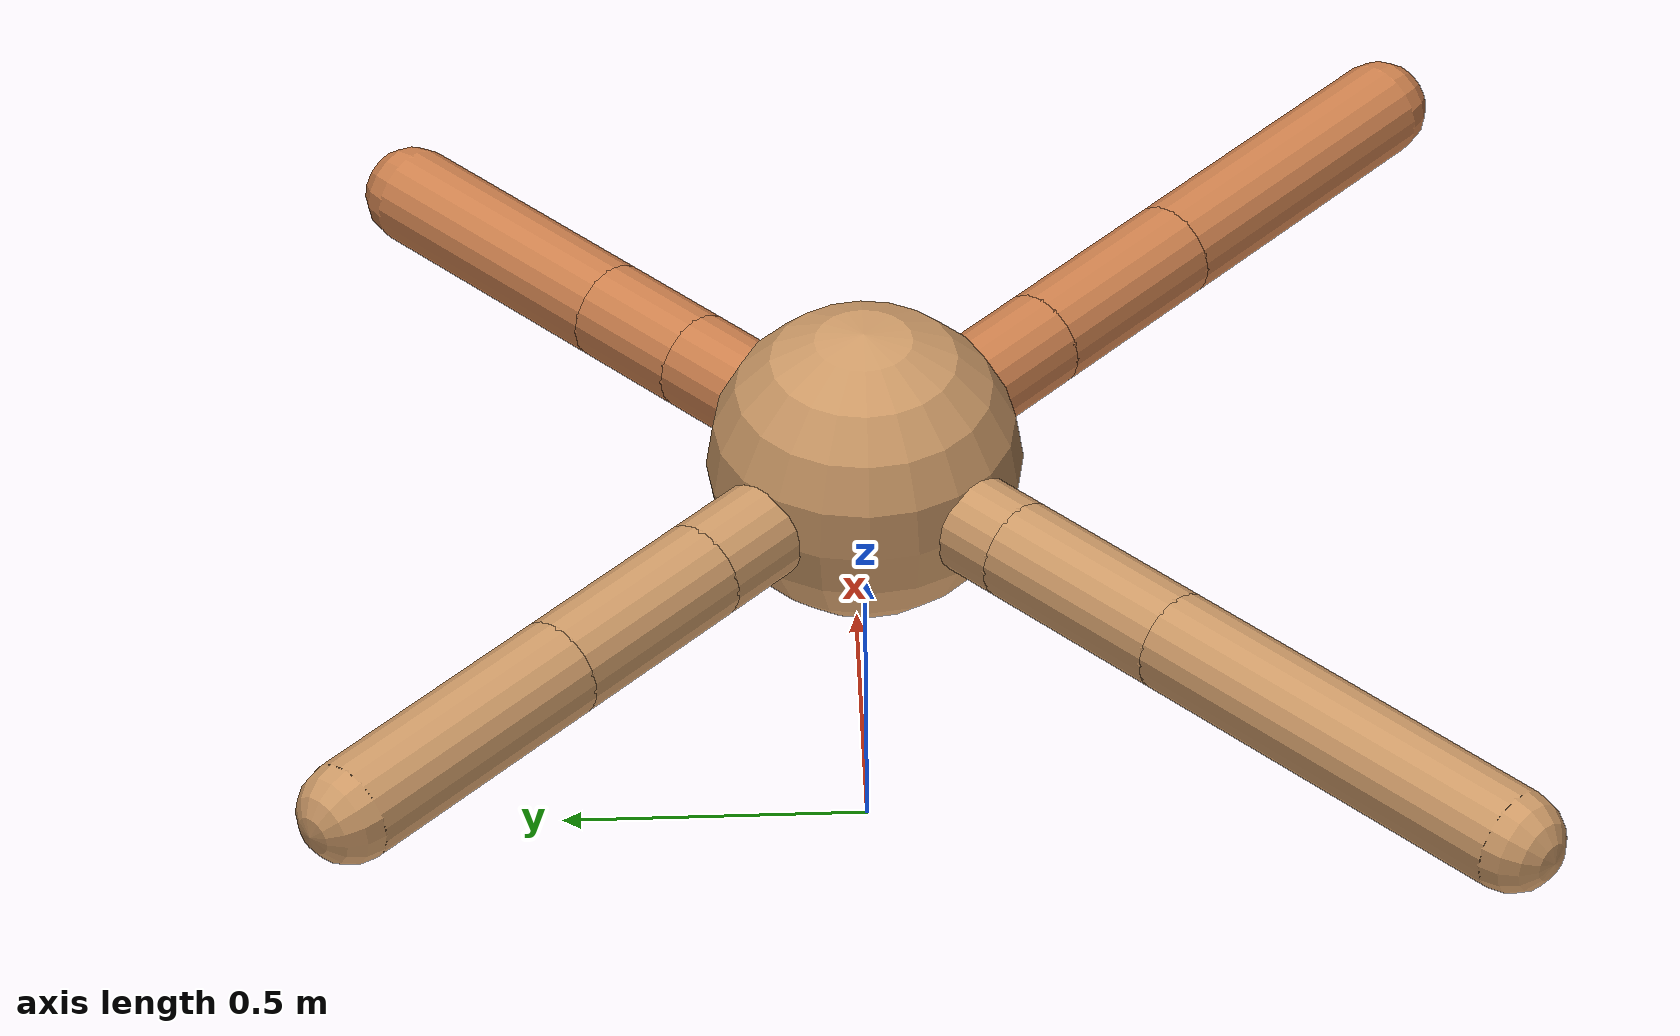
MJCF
<mujoco model="ant">
  <compiler angle="degree" coordinate="local" inertiafromgeom="true" />
  <option integrator="RK4" timestep="0.01" />
  <custom>
    <numeric data="0.0 0.0 0.55 1.0 0.0 0.0 0.0 0.0 1.0 0.0 -1.0 0.0 -1.0 0.0 1.0" name="init_qpos" />
  </custom>
  <default>
    <joint armature="1" damping="1" limited="true" />
    <geom conaffinity="0" condim="3" density="5.0" friction="1.5 0.1 0.1" margin="0.01" rgba="0.8 0.6 0.4 1" />
  </default>
  <worldbody>
    <body name="torso" pos="0 0 0.75">
      <geom name="torso_geom" pos="0 0 0" size="0.25" type="sphere" />

      <body name="front_left_leg" pos="0 0 0">
        <geom fromto="0.0 0.0 0.0 0.2619947565064408 0.2619947565064408 0.0" name="aux_1_geom" size="0.08" type="capsule" rgba=".8 .5 .3 1" />
        <body name="aux_1" pos="0.2619947565064408 0.2619947565064408 0.0">
          <joint axis="0 0 1" name="hip_1" pos="0.0 0.0 0.0" range="-40 40" type="hinge" />
          <geom fromto="0.0 0.0 0.0 0.13640746390451375 0.13640746390451375 0.0" name="left_leg_geom" size="0.08" type="capsule" rgba=".8 .5 .3 1" />
          <body pos="0.13640746390451375 0.13640746390451375 0.0" name="front_left_foot">
            <joint axis="-1 1 0" name="ankle_1" pos="0.0 0.0 0.0" range="30 100" type="hinge" />
            <geom fromto="0.0 0.0 0.0 0.32207137800613994 0.32207137800613994 0.0" name="left_ankle_geom" size="0.08" type="capsule" rgba=".8 .5 .3 1" />
          </body>
        </body>
      </body>
      <body name="front_right_leg" pos="0 0 0">
        <geom fromto="0.0 0.0 0.0 -0.2603566807009751 0.2603566807009751 0.0" name="aux_2_geom" size="0.08" type="capsule" />
        <body name="aux_2" pos="-0.2603566807009751 0.2603566807009751 0.0">
          <joint axis="0 0 1" name="hip_2" pos="0.0 0.0 0.0" range="-40 40" type="hinge" />
          <geom fromto="0.0 0.0 0.0 -0.21965899689047244 0.21965899689047244 0.0" name="right_leg_geom" size="0.08" type="capsule" />
          <body pos="-0.21965899689047244 0.21965899689047244 0.0" name="front_right_foot">
            <joint axis="1 1 0" name="ankle_2" pos="0.0 0.0 0.0" range="-100 -30" type="hinge" />
            <geom fromto="0.0 0.0 0.0 -0.3109174986597455 0.3109174986597455 0.0" name="right_ankle_geom" size="0.08" type="capsule" />
          </body>
        </body>
      </body>
      <body name="left_back_leg" pos="0 0 0">
        <geom fromto="0.0 0.0 0.0 -0.2291623984187178 -0.2291623984187178 0.0" name="aux_3_geom" size="0.08" type="capsule" />
        <body name="aux_3" pos="-0.2291623984187178 -0.2291623984187178 0.0">
          <joint axis="0 0 1" name="hip_3" pos="0.0 0.0 0.0" range="-40 40" type="hinge" />
          <geom fromto="0.0 0.0 0.0 -0.22572890825160075 -0.22572890825160075 0.0" name="back_leg_geom" size="0.08" type="capsule" />
          <body pos="-0.22572890825160075 -0.22572890825160075 0.0" name="left_back_foot">
            <joint axis="-1 1 0" name="ankle_3" pos="0.0 0.0 0.0" range="-100 -30" type="hinge" />
            <geom fromto="0.0 0.0 0.0 -0.4691055522698081 -0.4691055522698081 0.0" name="third_ankle_geom" size="0.08" type="capsule" />
          </body>
        </body>
      </body>
      <body name="right_back_leg" pos="0 0 0">
        <geom fromto="0.0 0.0 0.0 0.29316822474610754 -0.29316822474610754 0.0" name="aux_4_geom" size="0.08" type="capsule" rgba=".8 .5 .3 1" />
        <body name="aux_4" pos="0.29316822474610754 -0.29316822474610754 0.0">
          <joint axis="0 0 1" name="hip_4" pos="0.0 0.0 0.0" range="-40 40" type="hinge" />
          <geom fromto="0.0 0.0 0.0 0.22492741634116312 -0.22492741634116312 0.0" name="rightback_leg_geom" size="0.08" type="capsule" rgba=".8 .5 .3 1" />
          <body pos="0.22492741634116312 -0.22492741634116312 0.0" name="right_back_foot">
            <joint axis="1 1 0" name="ankle_4" pos="0.0 0.0 0.0" range="30 100" type="hinge" />
            <geom fromto="0.0 0.0 0.0 0.3757514246556837 -0.3757514246556837 0.0" name="fourth_ankle_geom" size="0.08" type="capsule" rgba=".8 .5 .3 1" />
          </body>
        </body>
      </body>
    </body>
  </worldbody>
  <actuator>
    <motor ctrllimited="true" ctrlrange="-1.0 1.0" joint="hip_4" gear="150" />
    <motor ctrllimited="true" ctrlrange="-1.0 1.0" joint="ankle_4" gear="150" />
    <motor ctrllimited="true" ctrlrange="-1.0 1.0" joint="hip_1" gear="150" />
    <motor ctrllimited="true" ctrlrange="-1.0 1.0" joint="ankle_1" gear="150" />
    <motor ctrllimited="true" ctrlrange="-1.0 1.0" joint="hip_2" gear="150" />
    <motor ctrllimited="true" ctrlrange="-1.0 1.0" joint="ankle_2" gear="150" />
    <motor ctrllimited="true" ctrlrange="-1.0 1.0" joint="hip_3" gear="150" />
    <motor ctrllimited="true" ctrlrange="-1.0 1.0" joint="ankle_3" gear="150" />
  </actuator>
</mujoco>
